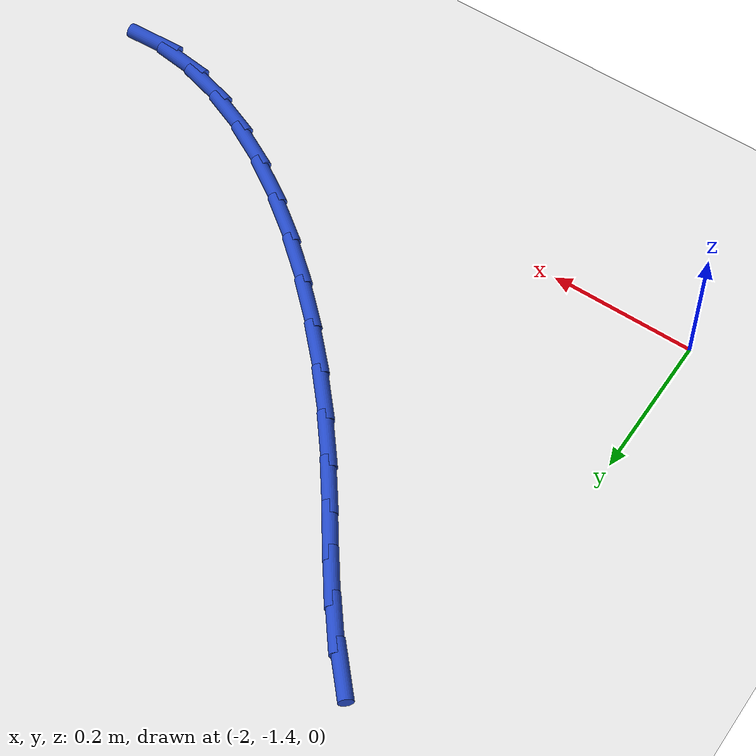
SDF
<sdf version="1.6">
 <world name="default">
  <model name="ground_plane">
   <static>1</static>
   <link name="link">
    <collision name="collision">
     <geometry><plane><normal>0 0 1</normal><size>100 100</size></plane></geometry>
     <surface><friction><ode><mu>100</mu><mu2>50</mu2></ode></friction></surface>
    </collision>
    <visual name="visual">
     <cast_shadows>0</cast_shadows>
     <geometry><plane><normal>0 0 1</normal><size>100 100</size></plane></geometry>
     <material>
      <script><uri>file://media/materials/scripts/gazebo.material</uri><name>Gazebo/WhiteGlow</name></script>
     </material>
    </visual>
   </link>
  </model>
  <model name="line">
   <link name="link_83">
    <pose>-1.8801469905760282 -0.7900420550313347 0.01 0 1.57 -0.8430301814376697</pose>
    <collision name="collision">
     <geometry><cylinder><radius>0.01</radius><length>0.08</length></cylinder></geometry>
    </collision>
    <visual name="visual">
     <material>
      <script><name>Gazebo/Blue</name><uri>file://media/materials/scripts/gazebo.material</uri></script>
     </material>
     <geometry><cylinder><radius>0.01</radius><length>0.08</length></cylinder></geometry>
    </visual>
   </link>
   <link name="link_84">
    <pose>-1.840478849986533 -0.834567840838135 0.01 0 1.57 -0.9075710025196698</pose>
    <collision name="collision">
     <geometry><cylinder><radius>0.01</radius><length>0.08</length></cylinder></geometry>
    </collision>
    <visual name="visual">
     <material>
      <script><name>Gazebo/Blue</name><uri>file://media/materials/scripts/gazebo.material</uri></script>
     </material>
     <geometry><cylinder><radius>0.01</radius><length>0.08</length></cylinder></geometry>
    </visual>
   </link>
   <link name="link_85">
    <pose>-1.8035547708505166 -0.8818284866420044 0.01 0 1.57 -0.9437825118650539</pose>
    <collision name="collision">
     <geometry><cylinder><radius>0.01</radius><length>0.08</length></cylinder></geometry>
    </collision>
    <visual name="visual">
     <material>
      <script><name>Gazebo/Blue</name><uri>file://media/materials/scripts/gazebo.material</uri></script>
     </material>
     <geometry><cylinder><radius>0.01</radius><length>0.08</length></cylinder></geometry>
    </visual>
   </link>
   <link name="link_86">
    <pose>-1.7678097405513027 -0.9311625307206202 0.01 0 1.57 -0.9520638759311859</pose>
    <collision name="collision">
     <geometry><cylinder><radius>0.01</radius><length>0.08</length></cylinder></geometry>
    </collision>
    <visual name="visual">
     <material>
      <script><name>Gazebo/Blue</name><uri>file://media/materials/scripts/gazebo.material</uri></script>
     </material>
     <geometry><cylinder><radius>0.01</radius><length>0.08</length></cylinder></geometry>
    </visual>
   </link>
   <link name="link_87">
    <pose>-1.7316787464722143 -0.9819085113516568 0.01 0 1.57 -0.9340448665593143</pose>
    <collision name="collision">
     <geometry><cylinder><radius>0.01</radius><length>0.08</length></cylinder></geometry>
    </collision>
    <visual name="visual">
     <material>
      <script><name>Gazebo/Blue</name><uri>file://media/materials/scripts/gazebo.material</uri></script>
     </material>
     <geometry><cylinder><radius>0.01</radius><length>0.08</length></cylinder></geometry>
    </visual>
   </link>
   <link name="link_88">
    <pose>-1.6935967759965727 -1.03340496681279 0.01 0 1.57 -0.8953883910743416</pose>
    <collision name="collision">
     <geometry><cylinder><radius>0.01</radius><length>0.08</length></cylinder></geometry>
    </collision>
    <visual name="visual">
     <material>
      <script><name>Gazebo/Blue</name><uri>file://media/materials/scripts/gazebo.material</uri></script>
     </material>
     <geometry><cylinder><radius>0.01</radius><length>0.08</length></cylinder></geometry>
    </visual>
   </link>
   <link name="link_89">
    <pose>-1.6522915125402866 -1.0849660071822884 0.01 0 1.57 -0.8520554190962861</pose>
    <collision name="collision">
     <geometry><cylinder><radius>0.01</radius><length>0.08</length></cylinder></geometry>
    </collision>
    <visual name="visual">
     <material>
      <script><name>Gazebo/Blue</name><uri>file://media/materials/scripts/gazebo.material</uri></script>
     </material>
     <geometry><cylinder><radius>0.01</radius><length>0.08</length></cylinder></geometry>
    </visual>
   </link>
   <link name="link_90">
    <pose>-1.6078246581377047 -1.1357944063083432 0.01 0 1.57 -0.8069588812708167</pose>
    <collision name="collision">
     <geometry><cylinder><radius>0.01</radius><length>0.08</length></cylinder></geometry>
    </collision>
    <visual name="visual">
     <material>
      <script><name>Gazebo/Blue</name><uri>file://media/materials/scripts/gazebo.material</uri></script>
     </material>
     <geometry><cylinder><radius>0.01</radius><length>0.08</length></cylinder></geometry>
    </visual>
   </link>
   <link name="link_91">
    <pose>-1.5606377620637317 -1.185061236262887 0.01 0 1.57 -0.7585312127245977</pose>
    <collision name="collision">
     <geometry><cylinder><radius>0.01</radius><length>0.08</length></cylinder></geometry>
    </collision>
    <visual name="visual">
     <material>
      <script><name>Gazebo/Blue</name><uri>file://media/materials/scripts/gazebo.material</uri></script>
     </material>
     <geometry><cylinder><radius>0.01</radius><length>0.08</length></cylinder></geometry>
    </visual>
   </link>
   <link name="link_92">
    <pose>-1.5111724010451817 -1.231937566826734 0.01 0 1.57 -0.705059483878134</pose>
    <collision name="collision">
     <geometry><cylinder><radius>0.01</radius><length>0.08</length></cylinder></geometry>
    </collision>
    <visual name="visual">
     <material>
      <script><name>Gazebo/Blue</name><uri>file://media/materials/scripts/gazebo.material</uri></script>
     </material>
     <geometry><cylinder><radius>0.01</radius><length>0.08</length></cylinder></geometry>
    </visual>
   </link>
   <link name="link_93">
    <pose>-1.459870151808866 -1.2755944677807007 0.01 0 1.57 -0.6445371092731307</pose>
    <collision name="collision">
     <geometry><cylinder><radius>0.01</radius><length>0.08</length></cylinder></geometry>
    </collision>
    <visual name="visual">
     <material>
      <script><name>Gazebo/Blue</name><uri>file://media/materials/scripts/gazebo.material</uri></script>
     </material>
     <geometry><cylinder><radius>0.01</radius><length>0.08</length></cylinder></geometry>
    </visual>
   </link>
   <link name="link_94">
    <pose>-1.4071725910815969 -1.315203008905604 0.01 0 1.57 -0.574511162480408</pose>
    <collision name="collision">
     <geometry><cylinder><radius>0.01</radius><length>0.08</length></cylinder></geometry>
    </collision>
    <visual name="visual">
     <material>
      <script><name>Gazebo/Blue</name><uri>file://media/materials/scripts/gazebo.material</uri></script>
     </material>
     <geometry><cylinder><radius>0.01</radius><length>0.08</length></cylinder></geometry>
    </visual>
   </link>
   <link name="link_95">
    <pose>-1.3535212955901872 -1.3499342599822572 0.01 0 1.57 -0.49193677118838824</pose>
    <collision name="collision">
     <geometry><cylinder><radius>0.01</radius><length>0.08</length></cylinder></geometry>
    </collision>
    <visual name="visual">
     <material>
      <script><name>Gazebo/Blue</name><uri>file://media/materials/scripts/gazebo.material</uri></script>
     </material>
     <geometry><cylinder><radius>0.01</radius><length>0.08</length></cylinder></geometry>
    </visual>
   </link>
   <link name="link_96">
    <pose>-1.2993578420614496 -1.3789592907914778 0.01 0 1.57 -0.39309888798090975</pose>
    <collision name="collision">
     <geometry><cylinder><radius>0.01</radius><length>0.08</length></cylinder></geometry>
    </collision>
    <visual name="visual">
     <material>
      <script><name>Gazebo/Blue</name><uri>file://media/materials/scripts/gazebo.material</uri></script>
     </material>
     <geometry><cylinder><radius>0.01</radius><length>0.08</length></cylinder></geometry>
    </visual>
   </link>
   <link name="link_97">
    <pose>-1.245123807222196 -1.4014491711140804 0.01 0 1.57 -0.27376859791584907</pose>
    <collision name="collision">
     <geometry><cylinder><radius>0.01</radius><length>0.08</length></cylinder></geometry>
    </collision>
    <visual name="visual">
     <material>
      <script><name>Gazebo/Blue</name><uri>file://media/materials/scripts/gazebo.material</uri></script>
     </material>
     <geometry><cylinder><radius>0.01</radius><length>0.08</length></cylinder></geometry>
    </visual>
   </link>
   <link name="link_98">
    <pose>-1.1912607677992386 -1.4165749707308817 0.01 0 1.57 -0.12994649206376757</pose>
    <collision name="collision">
     <geometry><cylinder><radius>0.01</radius><length>0.08</length></cylinder></geometry>
    </collision>
    <visual name="visual">
     <material>
      <script><name>Gazebo/Blue</name><uri>file://media/materials/scripts/gazebo.material</uri></script>
     </material>
     <geometry><cylinder><radius>0.01</radius><length>0.08</length></cylinder></geometry>
    </visual>
   </link>
   <link name="link_99">
    <pose>-1.1382103005193893 -1.4235077594226966 0.01 0 1.57 0.039116720441754224</pose>
    <collision name="collision">
     <geometry><cylinder><radius>0.01</radius><length>0.08</length></cylinder></geometry>
    </collision>
    <visual name="visual">
     <material>
      <script><name>Gazebo/Blue</name><uri>file://media/materials/scripts/gazebo.material</uri></script>
     </material>
     <geometry><cylinder><radius>0.01</radius><length>0.08</length></cylinder></geometry>
    </visual>
   </link>
  </model>
 </world>
</sdf>
